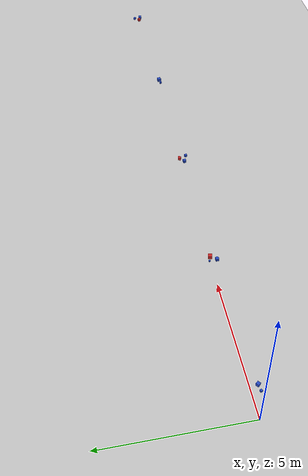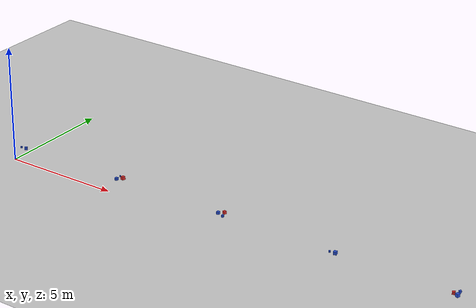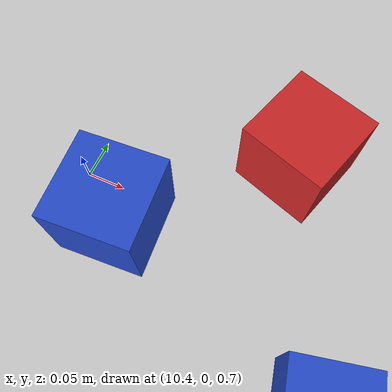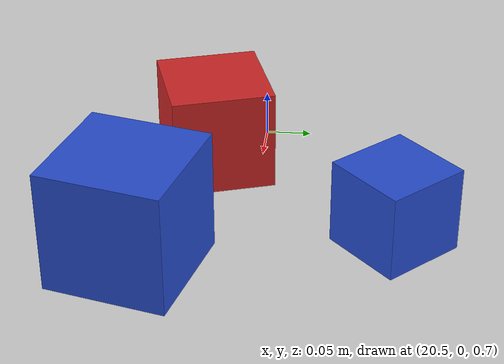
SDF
<sdf version="1.4">
 <world name="simple">
  <include><uri>model://ground_plane</uri></include>
  <include><uri>model://sun</uri></include>
  <include>
   <uri>model://blue_cube7cm</uri>
   <name>block12</name>
   <pose>0.500197613602 -0.118745901376 0.75 0 0 -2.78397345778</pose>
  </include>
  <include>
   <uri>model://blue_cube11cm</uri>
   <name>block13</name>
   <pose>0.723948475973 -0.0937514904264 0.75 0 0 -2.47457378201</pose>
  </include>
  <include>
   <uri>model://blue_cube11cm</uri>
   <name>block21</name>
   <pose>5.51713919253 -0.074690092367 0.75 0 0 -2.97586372528</pose>
  </include>
  <include>
   <uri>model://red_cube13cm</uri>
   <name>block22</name>
   <pose>5.67842360063 0.12900408951 0.75 0 0 1.34272735623</pose>
  </include>
  <include>
   <uri>model://blue_cube5cm</uri>
   <name>block24</name>
   <pose>5.48500173075 0.193527848879 0.75 0 0 -1.45262314315</pose>
  </include>
  <include>
   <uri>model://red_cube11cm</uri>
   <name>block32</name>
   <pose>10.6440305194 0.119472079223 0.75 0 0 1.24495816656</pose>
  </include>
  <include>
   <uri>model://blue_cube9cm</uri>
   <name>block33</name>
   <pose>10.7548686664 -0.149036577389 0.75 0 0 0.220407267677</pose>
  </include>
  <include>
   <uri>model://blue_cube11cm</uri>
   <name>block34</name>
   <pose>10.4650179774 -0.0414353726387 0.75 0 0 1.63348834626</pose>
  </include>
  <include>
   <uri>model://blue_cube13cm</uri>
   <name>block42</name>
   <pose>15.7298009909 -0.068137623071 0.75 0 0 0.213469586904</pose>
  </include>
  <include>
   <uri>model://blue_cube7cm</uri>
   <name>block44</name>
   <pose>15.5037974465 -0.09342699170567 0.75 0 0 1.93833777526</pose>
  </include>
  <include>
   <uri>model://red_cube11cm</uri>
   <name>block51</name>
   <pose>20.5723860742 -0.050356700977 0.75 0 0 -1.25814479054</pose>
  </include>
  <include>
   <uri>model://blue_cube13cm</uri>
   <name>block52</name>
   <pose>20.7582228555 -0.113277747744 0.75 0 0 2.89624338316</pose>
  </include>
  <include>
   <uri>model://blue_cube9cm</uri>
   <name>block54</name>
   <pose>20.7220074179 0.147712110855 0.75 0 0 0.759407131974</pose>
  </include>
 </world>
</sdf>

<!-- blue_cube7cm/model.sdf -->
<sdf version='1.4'>
  <model name="blue_cube7cm">
      <static>0</static>
      <link name='link'>
        <inertial>
          <mass>0.3</mass>
          <inertia>
            <ixx>0.001</ixx>
            <ixy>0.000000</ixy>
            <ixz>0.000000</ixz>
            <iyy>0.001</iyy>
            <iyz>0.000000</iyz>
            <izz>0.001</izz>
          </inertia>
        </inertial>
        <collision name='collision'>
          <geometry>
            <box>
              <size>0.070 0.070 0.070</size>
            </box>
          </geometry>
          <surface>
            <friction>
              <ode>
                <mu>5.0</mu>
                <mu2>5.0</mu2>
              </ode>
            </friction>
            <contact>
              <ode>
                <kp>1000000.0</kp>
                <kd>100.0</kd>
                <max_vel>1.0</max_vel>
                <min_depth>0.002</min_depth>
              </ode>
            </contact>
          </surface>
        </collision>
        <visual name='visual'>
          <geometry>
            <box>
              <size>0.070 0.070 0.070</size>
            </box>
          </geometry>
          <material>
            <script>
              <uri>file://media/materials/scripts/gazebo.material</uri>
              <name>Gazebo/Blue</name>
            </script>
          </material>
        </visual>
        <velocity_decay>
          <linear>0.000000</linear>
          <angular>0.000000</angular>
        </velocity_decay>
        <self_collide>0</self_collide>
        <kinematic>0</kinematic>
        <gravity>1</gravity>
      </link>
  </model>
</sdf>

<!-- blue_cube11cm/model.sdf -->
<sdf version='1.4'>
  <model name="blue_cube11cm">
      <static>0</static>
      <link name='link'>
        <inertial>
          <mass>0.3</mass>
          <inertia>
            <ixx>0.001</ixx>
            <ixy>0.000000</ixy>
            <ixz>0.000000</ixz>
            <iyy>0.001</iyy>
            <iyz>0.000000</iyz>
            <izz>0.001</izz>
          </inertia>
        </inertial>
        <collision name='collision'>
          <geometry>
            <box>
              <size>0.110 0.110 0.110</size>
            </box>
          </geometry>
          <surface>
            <friction>
              <ode>
                <mu>5.0</mu>
                <mu2>5.0</mu2>
              </ode>
            </friction>
            <contact>
              <ode>
                <kp>1000000.0</kp>
                <kd>100.0</kd>
                <max_vel>1.0</max_vel>
                <min_depth>0.002</min_depth>
              </ode>
            </contact>
          </surface>
        </collision>
        <visual name='visual'>
          <geometry>
            <box>
              <size>0.110 0.110 0.110</size>
            </box>
          </geometry>
          <material>
            <script>
              <uri>file://media/materials/scripts/gazebo.material</uri>
              <name>Gazebo/Blue</name>
            </script>
          </material>
        </visual>
        <velocity_decay>
          <linear>0.000000</linear>
          <angular>0.000000</angular>
        </velocity_decay>
        <self_collide>0</self_collide>
        <kinematic>0</kinematic>
        <gravity>1</gravity>
      </link>
  </model>
</sdf>

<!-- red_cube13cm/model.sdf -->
<sdf version='1.4'>
  <model name="red_cube13cm">
      <static>0</static>
      <link name='link'>
        <inertial>
          <mass>0.3</mass>
          <inertia>
            <ixx>0.001</ixx>
            <ixy>0.000000</ixy>
            <ixz>0.000000</ixz>
            <iyy>0.001</iyy>
            <iyz>0.000000</iyz>
            <izz>0.001</izz>
          </inertia>
        </inertial>
        <collision name='collision'>
          <geometry>
            <box>
              <size>0.130 0.130 0.130</size>
            </box>
          </geometry>
          <surface>
            <friction>
              <ode>
                <mu>5.0</mu>
                <mu2>5.0</mu2>
              </ode>
            </friction>
            <contact>
              <ode>
                <kp>1000000.0</kp>
                <kd>100.0</kd>
                <max_vel>1.0</max_vel>
                <min_depth>0.002</min_depth>
              </ode>
            </contact>
          </surface>
        </collision>
        <visual name='visual'>
          <geometry>
            <box>
              <size>0.130 0.130 0.130</size>
            </box>
          </geometry>
          <material>
            <script>
              <uri>file://media/materials/scripts/gazebo.material</uri>
              <name>Gazebo/Red</name>
            </script>
          </material>
        </visual>
        <velocity_decay>
          <linear>0.000000</linear>
          <angular>0.000000</angular>
        </velocity_decay>
        <self_collide>0</self_collide>
        <kinematic>0</kinematic>
        <gravity>1</gravity>
      </link>
  </model>
</sdf>

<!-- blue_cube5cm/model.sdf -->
<sdf version='1.4'>
  <model name="blue_cube5cm">
      <static>0</static>
      <link name='link'>
        <inertial>
          <mass>0.3</mass>
          <inertia>
            <ixx>0.001</ixx>
            <ixy>0.000000</ixy>
            <ixz>0.000000</ixz>
            <iyy>0.001</iyy>
            <iyz>0.000000</iyz>
            <izz>0.001</izz>
          </inertia>
        </inertial>
        <collision name='collision'>
          <geometry>
            <box>
              <size>0.050 0.050 0.050</size>
            </box>
          </geometry>
          <surface>
            <friction>
              <ode>
                <mu>5.0</mu>
                <mu2>5.0</mu2>
              </ode>
            </friction>
            <contact>
              <ode>
                <kp>1000000.0</kp>
                <kd>100.0</kd>
                <max_vel>1.0</max_vel>
                <min_depth>0.002</min_depth>
              </ode>
            </contact>
          </surface>
        </collision>
        <visual name='visual'>
          <geometry>
            <box>
              <size>0.050 0.050 0.050</size>
            </box>
          </geometry>
          <material>
            <script>
              <uri>file://media/materials/scripts/gazebo.material</uri>
              <name>Gazebo/Blue</name>
            </script>
          </material>
        </visual>
        <velocity_decay>
          <linear>0.000000</linear>
          <angular>0.000000</angular>
        </velocity_decay>
        <self_collide>0</self_collide>
        <kinematic>0</kinematic>
        <gravity>1</gravity>
      </link>
  </model>
</sdf>

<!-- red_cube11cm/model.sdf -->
<sdf version='1.4'>
  <model name="red_cube11cm">
      <static>0</static>
      <link name='link'>
        <inertial>
          <mass>0.3</mass>
          <inertia>
            <ixx>0.001</ixx>
            <ixy>0.000000</ixy>
            <ixz>0.000000</ixz>
            <iyy>0.001</iyy>
            <iyz>0.000000</iyz>
            <izz>0.001</izz>
          </inertia>
        </inertial>
        <collision name='collision'>
          <geometry>
            <box>
              <size>0.110 0.110 0.110</size>
            </box>
          </geometry>
          <surface>
            <friction>
              <ode>
                <mu>5.0</mu>
                <mu2>5.0</mu2>
              </ode>
            </friction>
            <contact>
              <ode>
                <kp>1000000.0</kp>
                <kd>100.0</kd>
                <max_vel>1.0</max_vel>
                <min_depth>0.002</min_depth>
              </ode>
            </contact>
          </surface>
        </collision>
        <visual name='visual'>
          <geometry>
            <box>
              <size>0.110 0.110 0.110</size>
            </box>
          </geometry>
          <material>
            <script>
              <uri>file://media/materials/scripts/gazebo.material</uri>
              <name>Gazebo/Red</name>
            </script>
          </material>
        </visual>
        <velocity_decay>
          <linear>0.000000</linear>
          <angular>0.000000</angular>
        </velocity_decay>
        <self_collide>0</self_collide>
        <kinematic>0</kinematic>
        <gravity>1</gravity>
      </link>
  </model>
</sdf>

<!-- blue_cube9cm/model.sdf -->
<sdf version='1.4'>
  <model name="blue_cube9cm">
      <static>0</static>
      <link name='link'>
        <inertial>
          <mass>0.3</mass>
          <inertia>
            <ixx>0.001</ixx>
            <ixy>0.000000</ixy>
            <ixz>0.000000</ixz>
            <iyy>0.001</iyy>
            <iyz>0.000000</iyz>
            <izz>0.001</izz>
          </inertia>
        </inertial>
        <collision name='collision'>
          <geometry>
            <box>
              <size>0.090 0.090 0.090</size>
            </box>
          </geometry>
          <surface>
            <friction>
              <ode>
                <mu>5.0</mu>
                <mu2>5.0</mu2>
              </ode>
            </friction>
            <contact>
              <ode>
                <kp>1000000.0</kp>
                <kd>100.0</kd>
                <max_vel>1.0</max_vel>
                <min_depth>0.002</min_depth>
              </ode>
            </contact>
          </surface>
        </collision>
        <visual name='visual'>
          <geometry>
            <box>
              <size>0.090 0.090 0.090</size>
            </box>
          </geometry>
          <material>
            <script>
              <uri>file://media/materials/scripts/gazebo.material</uri>
              <name>Gazebo/Blue</name>
            </script>
          </material>
        </visual>
        <velocity_decay>
          <linear>0.000000</linear>
          <angular>0.000000</angular>
        </velocity_decay>
        <self_collide>0</self_collide>
        <kinematic>0</kinematic>
        <gravity>1</gravity>
      </link>
  </model>
</sdf>

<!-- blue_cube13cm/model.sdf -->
<sdf version='1.4'>
  <model name="blue_cube13cm">
      <static>0</static>
      <link name='link'>
        <inertial>
          <mass>0.3</mass>
          <inertia>
            <ixx>0.001</ixx>
            <ixy>0.000000</ixy>
            <ixz>0.000000</ixz>
            <iyy>0.001</iyy>
            <iyz>0.000000</iyz>
            <izz>0.001</izz>
          </inertia>
        </inertial>
        <collision name='collision'>
          <geometry>
            <box>
              <size>0.130 0.130 0.130</size>
            </box>
          </geometry>
          <surface>
            <friction>
              <ode>
                <mu>5.0</mu>
                <mu2>5.0</mu2>
              </ode>
            </friction>
            <contact>
              <ode>
                <kp>1000000.0</kp>
                <kd>100.0</kd>
                <max_vel>1.0</max_vel>
                <min_depth>0.002</min_depth>
              </ode>
            </contact>
          </surface>
        </collision>
        <visual name='visual'>
          <geometry>
            <box>
              <size>0.130 0.130 0.130</size>
            </box>
          </geometry>
          <material>
            <script>
              <uri>file://media/materials/scripts/gazebo.material</uri>
              <name>Gazebo/Blue</name>
            </script>
          </material>
        </visual>
        <velocity_decay>
          <linear>0.000000</linear>
          <angular>0.000000</angular>
        </velocity_decay>
        <self_collide>0</self_collide>
        <kinematic>0</kinematic>
        <gravity>1</gravity>
      </link>
  </model>
</sdf>
